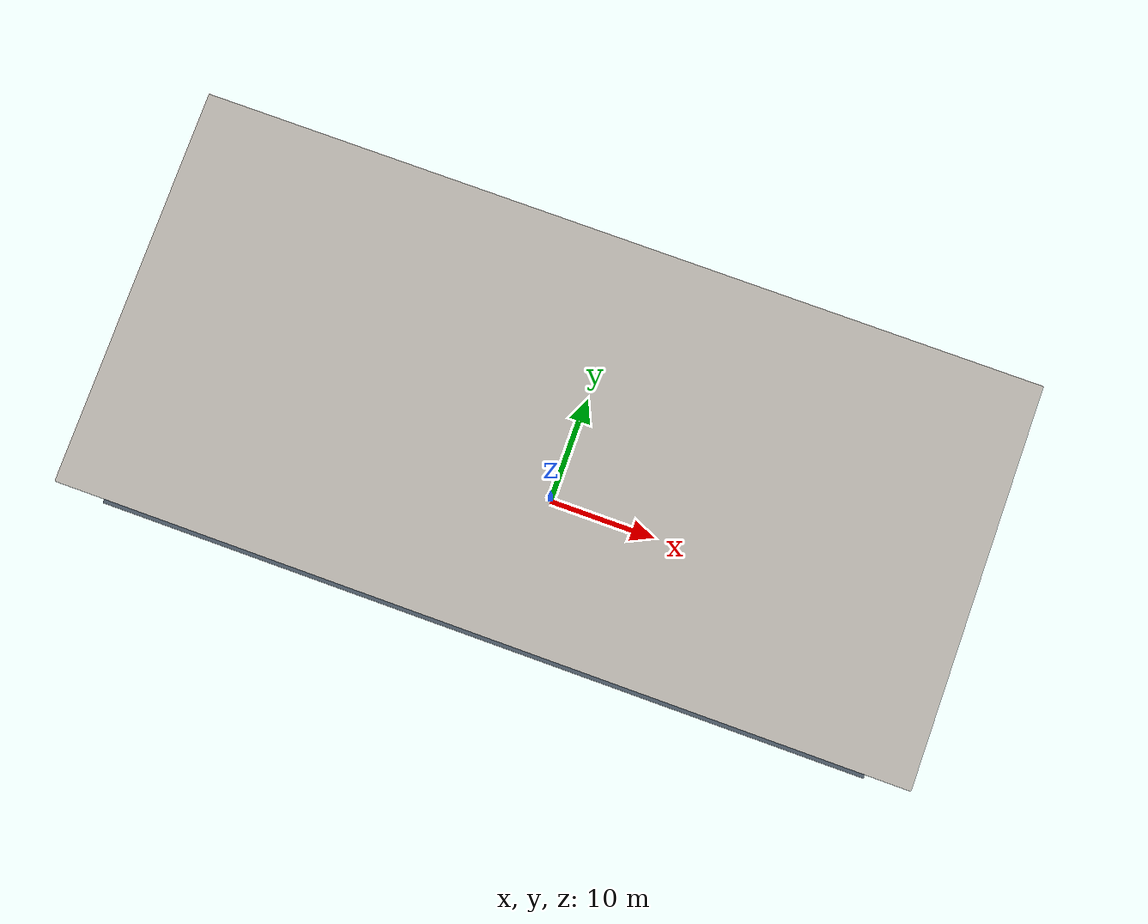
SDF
<?xml version="1.0" ?>
<sdf version="1.8">
  <model name="gxn_west_end_block">
    <static>true</static>
    <link name="block_link">
      <collision name="col"><pose>0 0 22.5 0 0 0</pose><geometry><box><size>55.0 26.0 45.0</size></box></geometry></collision>
      <visual name="main_vis"><pose>0 0 22.5 0 0 0</pose><geometry><box><size>55.0 26.0 45.0</size></box></geometry><material><ambient>0.73 0.72 0.70 1</ambient><diffuse>0.80 0.78 0.75 1</diffuse></material></visual>
      <visual name="balconies"><pose>0 0 22.5 0 0 0</pose><geometry><box><size>51.0 26.6 37.0</size></box></geometry><material><ambient>0.22 0.26 0.32 0.88</ambient><diffuse>0.28 0.34 0.40 0.88</diffuse></material></visual>
    </link>
  </model>
</sdf>
